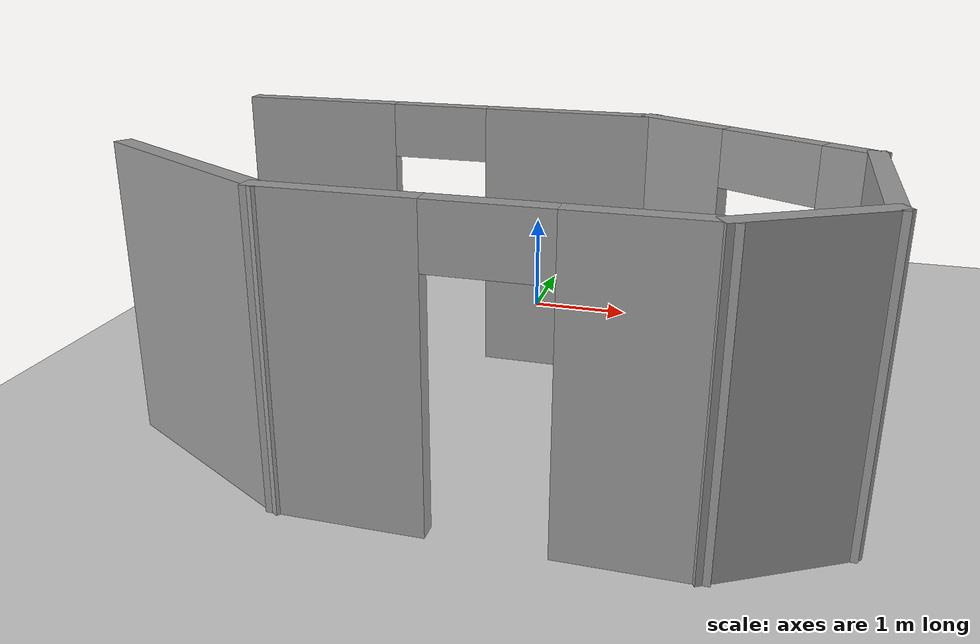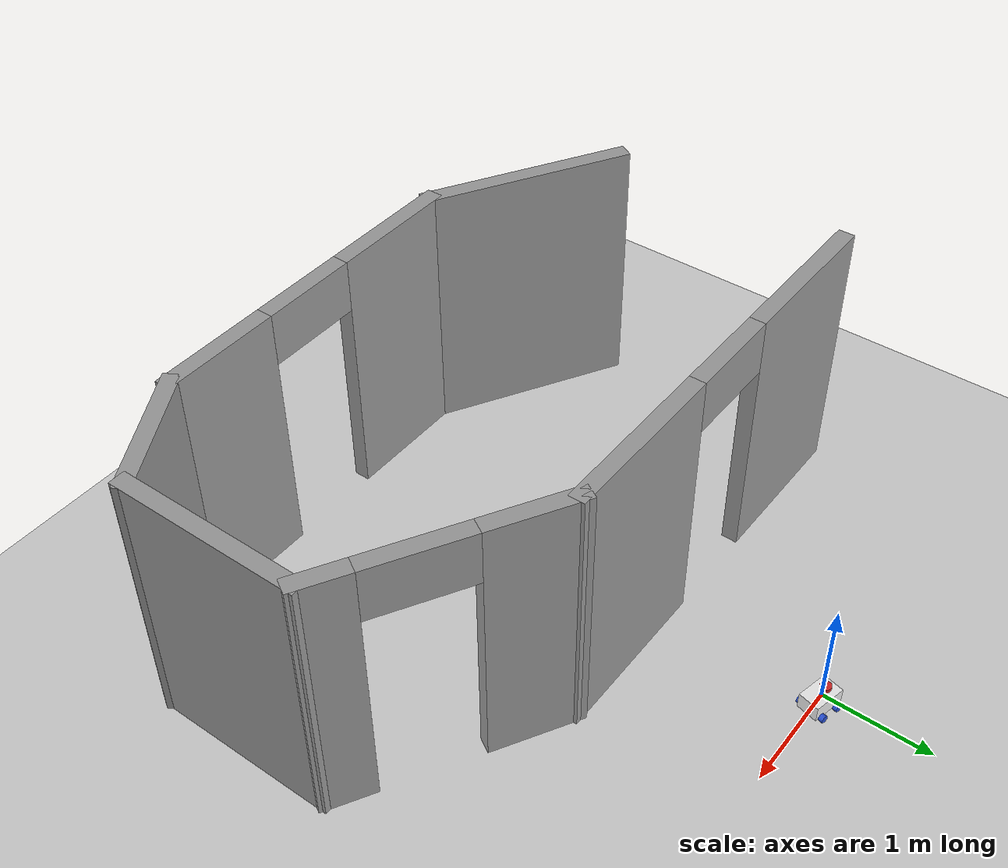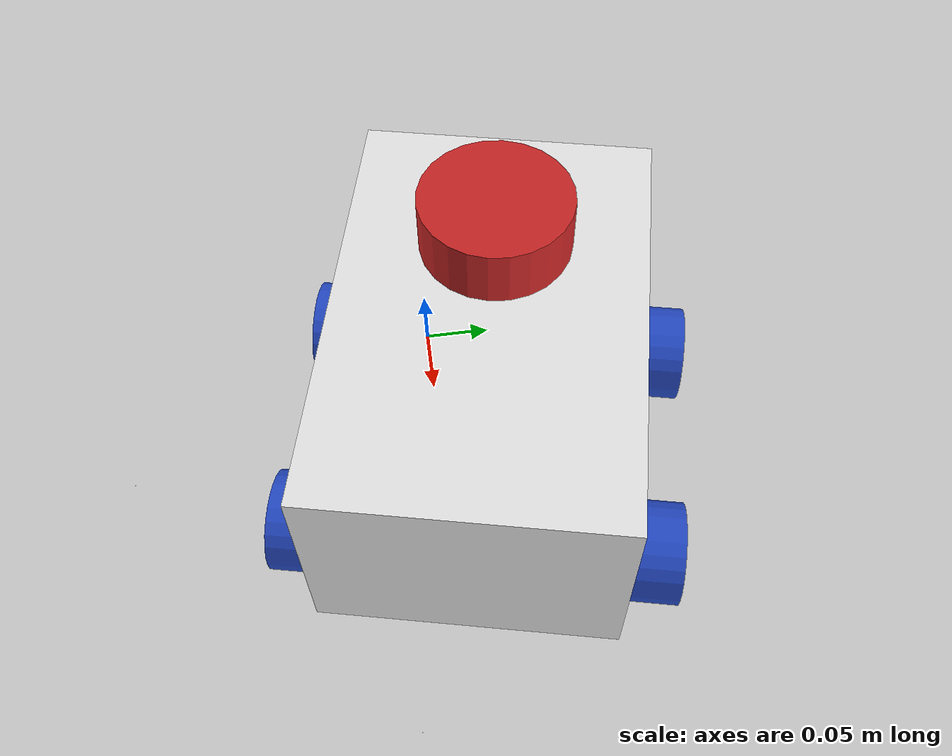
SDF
<sdf version="1.7">
 <world name="default">
  <light name="sun" type="directional">
   <pose>0 0 10 0 -0 0</pose>
   <diffuse>0.8 0.8 0.8 1</diffuse>
   <specular>0.2 0.2 0.2 1</specular>
   <attenuation>
    <range>1000</range>
    <constant>0.9</constant>
    <linear>0.01</linear>
    <quadratic>0.001</quadratic>
   </attenuation>
   <direction>-0.5 0.1 -0.9</direction>
   <spot><inner_angle>0</inner_angle><outer_angle>0</outer_angle><falloff>0</falloff></spot>
  </light>
  <model name="ground_plane">
   <static>1</static>
   <link name="link">
    <collision name="collision">
     <geometry><plane><normal>0 0 1</normal><size>100 100</size></plane></geometry>
     <surface><friction><ode><mu>100</mu><mu2>50</mu2></ode></friction></surface>
    </collision>
    <visual name="visual">
     <cast_shadows>0</cast_shadows>
     <geometry><plane><normal>0 0 1</normal><size>100 100</size></plane></geometry>
     <material>
      <script><uri>file://media/materials/scripts/gazebo.material</uri><name>Gazebo/Grey</name></script>
     </material>
    </visual>
   </link>
  </model>
  <gravity>0 0 -9.8</gravity>
  <magnetic_field>6e-06 2.3e-05 -4.2e-05</magnetic_field>
  <atmosphere type="adiabatic"/>
  <physics type="ode">
   <max_step_size>0.001</max_step_size>
   <real_time_factor>1</real_time_factor>
   <real_time_update_rate>1000</real_time_update_rate>
  </physics>
  <scene><ambient>0.4 0.4 0.4 1</ambient><background>0.7 0.7 0.7 1</background><shadows>1</shadows></scene>
  <audio><device>default</device></audio>
  <spherical_coordinates>
   <surface_model>EARTH_WGS84</surface_model>
   <latitude_deg>0</latitude_deg>
   <longitude_deg>0</longitude_deg>
   <elevation>0</elevation>
   <heading_deg>0</heading_deg>
  </spherical_coordinates>
  <model name="my_bot">
   <link name="base_link">
    <inertial>
     <pose>0.076667 0 0.091667 0 -0 0</pose>
     <mass>0.6</mass>
     <inertia>
      <ixx>0.00559667</ixx>
      <ixy>0</ixy>
      <ixz>0.000416667</ixz>
      <iyy>0.005805</iyy>
      <iyz>0</iyz>
      <izz>0.00783333</izz>
     </inertia>
    </inertial>
    <collision name="base_link_fixed_joint_lump__chassis_collision">
     <pose>0.085 0 0.075 0 -0 0</pose>
     <geometry><box><size>0.3 0.2 0.15</size></box></geometry>
    </collision>
    <collision name="base_link_fixed_joint_lump__laser_frame_collision_1">
     <pose>0.035 0 0.175 0 -0 0</pose>
     <geometry><cylinder><length>0.04</length><radius>0.05</radius></cylinder></geometry>
    </collision>
    <visual name="base_link_fixed_joint_lump__chassis_visual">
     <pose>0.085 0 0.075 0 -0 0</pose>
     <geometry><box><size>0.3 0.2 0.15</size></box></geometry>
     <material>
      <script><name>Gazebo/White</name><uri>file://media/materials/scripts/gazebo.material</uri></script>
     </material>
    </visual>
    <visual name="base_link_fixed_joint_lump__laser_frame_visual_1">
     <pose>0.035 0 0.175 0 -0 0</pose>
     <geometry><cylinder><length>0.04</length><radius>0.05</radius></cylinder></geometry>
     <material>
      <script><name>Gazebo/Red</name><uri>file://media/materials/scripts/gazebo.material</uri></script>
     </material>
    </visual>
    <sensor name="laser" type="ray">
     <visualize>0</visualize>
     <update_rate>10</update_rate>
     <ray>
      <scan>
       <horizontal>
        <samples>360</samples>
        <resolution>1</resolution>
        <min_angle>-3.14</min_angle>
        <max_angle>3.14</max_angle>
       </horizontal>
       <vertical><samples>1</samples><min_angle>0</min_angle><max_angle>0</max_angle></vertical>
      </scan>
      <range><min>0.3</min><max>12</max><resolution>0.01</resolution></range>
     </ray>
     <plugin name="laser_controller" filename="libgazebo_ros_ray_sensor.so">
      <ros><argument>~/out:=scan</argument></ros>
      <output_type>sensor_msgs/LaserScan</output_type>
      <frame_name>laser_frame</frame_name>
     </plugin>
     <pose>0.035 0 0.175 0 -0 0</pose>
    </sensor>
   </link>
   <joint name="left_wheel_steer_joint" type="revolute">
    <pose relative_to="base_link">0.17 0.12 0 0 -0 0</pose>
    <parent>base_link</parent>
    <child>left_wheel_steer</child>
    <axis>
     <xyz>0 0 1</xyz>
     <limit><lower>-1</lower><upper>1</upper><effort>1</effort><velocity>5</velocity></limit>
     <dynamics><spring_reference>0</spring_reference><spring_stiffness>0</spring_stiffness></dynamics>
    </axis>
   </joint>
   <link name="left_wheel_steer">
    <pose relative_to="left_wheel_steer_joint">0 0 0 0 -0 0</pose>
    <inertial>
     <mass>0.001</mass>
     <inertia>
      <ixx>3.33333e-10</ixx>
      <ixy>0</ixy>
      <ixz>0</ixz>
      <iyy>3.33333e-10</iyy>
      <iyz>0</iyz>
      <izz>5e-10</izz>
     </inertia>
    </inertial>
    <collision name="left_wheel_steer_collision">
     <geometry><sphere><radius>0.001</radius></sphere></geometry>
    </collision>
    <visual name="left_wheel_steer_visual">
     <geometry><cylinder><length>0.001</length><radius>0.001</radius></cylinder></geometry>
     <material>
      <script><name>Gazebo/Blue</name><uri>file://media/materials/scripts/gazebo.material</uri></script>
     </material>
    </visual>
   </link>
   <joint name="F_left_wheel_joint" type="revolute">
    <pose relative_to="left_wheel_steer">0 0 0 -1.5708 0 0</pose>
    <parent>left_wheel_steer</parent>
    <child>F_left_wheel</child>
    <axis>
     <xyz>0 0 1</xyz>
     <limit><lower>-1e+16</lower><upper>1e+16</upper></limit>
     <dynamics><spring_reference>0</spring_reference><spring_stiffness>0</spring_stiffness></dynamics>
    </axis>
   </joint>
   <link name="F_left_wheel">
    <pose relative_to="F_left_wheel_joint">0 0 0 0 -0 0</pose>
    <inertial>
     <mass>0.1</mass>
     <inertia>
      <ixx>4.39583e-05</ixx>
      <ixy>0</ixy>
      <ixz>0</ixz>
      <iyy>4.39583e-05</iyy>
      <iyz>0</iyz>
      <izz>6.125e-05</izz>
     </inertia>
    </inertial>
    <collision name="F_left_wheel_collision">
     <geometry><sphere><radius>0.035</radius></sphere></geometry>
    </collision>
    <visual name="F_left_wheel_visual">
     <geometry><cylinder><length>0.04</length><radius>0.035</radius></cylinder></geometry>
     <material>
      <script><name>Gazebo/Blue</name><uri>file://media/materials/scripts/gazebo.material</uri></script>
     </material>
    </visual>
   </link>
   <joint name="right_wheel_steer_joint" type="revolute">
    <pose relative_to="base_link">0.17 -0.12 0 0 -0 0</pose>
    <parent>base_link</parent>
    <child>right_wheel_steer</child>
    <axis>
     <xyz>0 0 1</xyz>
     <limit><lower>-1</lower><upper>1</upper><effort>1</effort><velocity>5</velocity></limit>
     <dynamics><spring_reference>0</spring_reference><spring_stiffness>0</spring_stiffness></dynamics>
    </axis>
   </joint>
   <link name="right_wheel_steer">
    <pose relative_to="right_wheel_steer_joint">0 0 0 0 -0 0</pose>
    <inertial>
     <mass>0.001</mass>
     <inertia>
      <ixx>3.33333e-10</ixx>
      <ixy>0</ixy>
      <ixz>0</ixz>
      <iyy>3.33333e-10</iyy>
      <iyz>0</iyz>
      <izz>5e-10</izz>
     </inertia>
    </inertial>
    <collision name="right_wheel_steer_collision">
     <geometry><sphere><radius>0.001</radius></sphere></geometry>
    </collision>
    <visual name="right_wheel_steer_visual">
     <geometry><cylinder><length>0.001</length><radius>0.001</radius></cylinder></geometry>
     <material>
      <script><name>Gazebo/Blue</name><uri>file://media/materials/scripts/gazebo.material</uri></script>
     </material>
    </visual>
   </link>
   <joint name="F_right_wheel_joint" type="revolute">
    <pose relative_to="right_wheel_steer">0 0 0 1.5708 -0 0</pose>
    <parent>right_wheel_steer</parent>
    <child>F_right_wheel</child>
    <axis>
     <xyz>0 0 1</xyz>
     <limit><lower>-1e+16</lower><upper>1e+16</upper></limit>
     <dynamics><spring_reference>0</spring_reference><spring_stiffness>0</spring_stiffness></dynamics>
    </axis>
   </joint>
   <link name="F_right_wheel">
    <pose relative_to="F_right_wheel_joint">0 0 0 0 -0 0</pose>
    <inertial>
     <mass>0.1</mass>
     <inertia>
      <ixx>4.39583e-05</ixx>
      <ixy>0</ixy>
      <ixz>0</ixz>
      <iyy>4.39583e-05</iyy>
      <iyz>0</iyz>
      <izz>6.125e-05</izz>
     </inertia>
    </inertial>
    <collision name="F_right_wheel_collision">
     <geometry><sphere><radius>0.035</radius></sphere></geometry>
    </collision>
    <visual name="F_right_wheel_visual">
     <geometry><cylinder><length>0.04</length><radius>0.035</radius></cylinder></geometry>
     <material>
      <script><name>Gazebo/Blue</name><uri>file://media/materials/scripts/gazebo.material</uri></script>
     </material>
    </visual>
   </link>
   <joint name="left_wheel_joint" type="revolute">
    <pose relative_to="base_link">0 0.12 0 -1.5708 0 0</pose>
    <parent>base_link</parent>
    <child>left_wheel</child>
    <axis>
     <xyz>0 0 1</xyz>
     <limit><lower>-1e+16</lower><upper>1e+16</upper></limit>
     <dynamics><spring_reference>0</spring_reference><spring_stiffness>0</spring_stiffness></dynamics>
    </axis>
   </joint>
   <link name="left_wheel">
    <pose relative_to="left_wheel_joint">0 0 0 0 -0 0</pose>
    <inertial>
     <pose>0 0.1 0 0 -0 0</pose>
     <mass>0.1</mass>
     <inertia>
      <ixx>4.39583e-05</ixx>
      <ixy>0</ixy>
      <ixz>0</ixz>
      <iyy>4.39583e-05</iyy>
      <iyz>0</iyz>
      <izz>6.125e-05</izz>
     </inertia>
    </inertial>
    <collision name="left_wheel_collision">
     <geometry><sphere><radius>0.035</radius></sphere></geometry>
    </collision>
    <visual name="left_wheel_visual">
     <geometry><cylinder><length>0.04</length><radius>0.035</radius></cylinder></geometry>
     <material>
      <script><name>Gazebo/Blue</name><uri>file://media/materials/scripts/gazebo.material</uri></script>
     </material>
    </visual>
   </link>
   <joint name="right_wheel_joint" type="revolute">
    <pose relative_to="base_link">0 -0.12 0 1.5708 -0 0</pose>
    <parent>base_link</parent>
    <child>right_wheel</child>
    <axis>
     <xyz>0 0 -1</xyz>
     <limit><lower>-1e+16</lower><upper>1e+16</upper></limit>
     <dynamics><spring_reference>0</spring_reference><spring_stiffness>0</spring_stiffness></dynamics>
    </axis>
   </joint>
   <link name="right_wheel">
    <pose relative_to="right_wheel_joint">0 0 0 0 -0 0</pose>
    <inertial>
     <mass>0.1</mass>
     <inertia>
      <ixx>4.39583e-05</ixx>
      <ixy>0</ixy>
      <ixz>0</ixz>
      <iyy>4.39583e-05</iyy>
      <iyz>0</iyz>
      <izz>6.125e-05</izz>
     </inertia>
    </inertial>
    <collision name="right_wheel_collision">
     <geometry><sphere><radius>0.035</radius></sphere></geometry>
    </collision>
    <visual name="right_wheel_visual">
     <geometry><cylinder><length>0.04</length><radius>0.035</radius></cylinder></geometry>
     <material>
      <script><name>Gazebo/Blue</name><uri>file://media/materials/scripts/gazebo.material</uri></script>
     </material>
    </visual>
   </link>
   <static>0</static>
   <plugin name="gazebo_ros2_control" filename="libgazebo_ros2_control.so">
    <parameters>/home/carloso/ros2_ws_23_2/install/f1_12th_simulator_g01/share/f1_12th_simulator_g01/config/my_controllers.yaml</parameters>
   </plugin>
   <pose>0.03694 0.053972 0.034999 -1.1e-05 0.000195 -0.23422</pose>
  </model>
  <model name="Mundo1">
   <pose>0.351266 -2.40623 0 0 -0 0</pose>
   <link name="Wall_0">
    <pose>-0.916266 0.896226 0 0 -0 0</pose>
    <visual name="Wall_0_Visual_0">
     <pose>-1.2475 0 1.25 0 -0 0</pose>
     <geometry><box><size>1.505 0.15 2.5</size></box></geometry>
     <material>
      <script><uri>file://media/materials/scripts/gazebo.material</uri><name>Gazebo/Grey</name></script>
      <ambient>1 1 1 1</ambient>
     </material>
     <meta><layer>0</layer></meta>
    </visual>
    <collision name="Wall_0_Collision_0">
     <geometry><box><size>1.505 0.15 2.5</size></box></geometry>
     <pose>-1.2475 0 1.25 0 -0 0</pose>
    </collision>
    <visual name="Wall_0_Visual_1">
     <pose>1.2025 0 1.25 0 -0 0</pose>
     <geometry><box><size>1.595 0.15 2.5</size></box></geometry>
     <material>
      <script><uri>file://media/materials/scripts/gazebo.material</uri><name>Gazebo/Grey</name></script>
      <ambient>1 1 1 1</ambient>
     </material>
     <meta><layer>0</layer></meta>
    </visual>
    <collision name="Wall_0_Collision_1">
     <geometry><box><size>1.595 0.15 2.5</size></box></geometry>
     <pose>1.2025 0 1.25 0 -0 0</pose>
    </collision>
    <visual name="Wall_0_Visual_2">
     <pose>-0.045 0 2.25 0 -0 0</pose>
     <geometry><box><size>0.9 0.15 0.5</size></box></geometry>
     <material>
      <script><uri>file://media/materials/scripts/gazebo.material</uri><name>Gazebo/Grey</name></script>
      <ambient>1 1 1 1</ambient>
     </material>
     <meta><layer>0</layer></meta>
    </visual>
    <collision name="Wall_0_Collision_2">
     <geometry><box><size>0.9 0.15 0.5</size></box></geometry>
     <pose>-0.045 0 2.25 0 -0 0</pose>
    </collision>
   </link>
   <link name="Wall_1">
    <pose>1.91806 0.371226 0 0 -0 -0.523599</pose>
    <visual name="Wall_1_Visual_0">
     <pose>-0.695516 0 1.25 0 -0 0</pose>
     <geometry><box><size>0.858968 0.15 2.5</size></box></geometry>
     <material>
      <script><uri>file://media/materials/scripts/gazebo.material</uri><name>Gazebo/Grey</name></script>
      <ambient>1 1 1 1</ambient>
     </material>
     <meta><layer>0</layer></meta>
    </visual>
    <collision name="Wall_1_Collision_0">
     <geometry><box><size>0.858968 0.15 2.5</size></box></geometry>
     <pose>-0.695516 0 1.25 0 -0 0</pose>
    </collision>
    <visual name="Wall_1_Visual_1">
     <pose>0.879484 0 1.25 0 -0 0</pose>
     <geometry><box><size>0.491032 0.15 2.5</size></box></geometry>
     <material>
      <script><uri>file://media/materials/scripts/gazebo.material</uri><name>Gazebo/Grey</name></script>
      <ambient>1 1 1 1</ambient>
     </material>
     <meta><layer>0</layer></meta>
    </visual>
    <collision name="Wall_1_Collision_1">
     <geometry><box><size>0.491032 0.15 2.5</size></box></geometry>
     <pose>0.879484 0 1.25 0 -0 0</pose>
    </collision>
    <visual name="Wall_1_Visual_2">
     <pose>0.183968 0 2.25 0 -0 0</pose>
     <geometry><box><size>0.9 0.15 0.5</size></box></geometry>
     <material>
      <script><uri>file://media/materials/scripts/gazebo.material</uri><name>Gazebo/Grey</name></script>
      <ambient>1 1 1 1</ambient>
     </material>
     <meta><layer>0</layer></meta>
    </visual>
    <collision name="Wall_1_Collision_2">
     <geometry><box><size>0.9 0.15 0.5</size></box></geometry>
     <pose>0.183968 0 2.25 0 -0 0</pose>
    </collision>
   </link>
   <link name="Wall_2">
    <collision name="Wall_2_Collision">
     <geometry><box><size>1.75 0.15 2.5</size></box></geometry>
     <pose>0 0 1.25 0 -0 0</pose>
    </collision>
    <visual name="Wall_2_Visual">
     <pose>0 0 1.25 0 -0 0</pose>
     <geometry><box><size>1.75 0.15 2.5</size></box></geometry>
     <material>
      <script><uri>file://media/materials/scripts/gazebo.material</uri><name>Gazebo/Grey</name></script>
      <ambient>1 1 1 1</ambient>
     </material>
     <meta><layer>0</layer></meta>
    </visual>
    <pose>2.82739 -0.953774 0 0 -0 -1.5708</pose>
   </link>
   <link name="Wall_3">
    <collision name="Wall_3_Collision">
     <geometry><box><size>1.25 0.15 2.5</size></box></geometry>
     <pose>0 0 1.25 0 -0 0</pose>
    </collision>
    <visual name="Wall_3_Visual">
     <pose>0 0 1.25 0 -0 0</pose>
     <geometry><box><size>1.25 0.15 2.5</size></box></geometry>
     <material>
      <script><uri>file://media/materials/scripts/gazebo.material</uri><name>Gazebo/Grey</name></script>
      <ambient>1 1 1 1</ambient>
     </material>
     <meta><layer>0</layer></meta>
    </visual>
    <pose>2.35107 -2.02877 0 0 -0 -2.61799</pose>
   </link>
   <link name="Wall_4">
    <pose>0.32476 -2.30377 0 0 -0 3.14159</pose>
    <visual name="Wall_4_Visual_0">
     <pose>-1.07449 0 1.25 0 -0 0</pose>
     <geometry><box><size>1.10102 0.15 2.5</size></box></geometry>
     <material>
      <script><uri>file://media/materials/scripts/gazebo.material</uri><name>Gazebo/Grey</name></script>
      <ambient>1 1 1 1</ambient>
     </material>
     <meta><layer>0</layer></meta>
    </visual>
    <collision name="Wall_4_Collision_0">
     <geometry><box><size>1.10102 0.15 2.5</size></box></geometry>
     <pose>-1.07449 0 1.25 0 -0 0</pose>
    </collision>
    <visual name="Wall_4_Visual_1">
     <pose>1.00051 0 1.25 0 -0 0</pose>
     <geometry><box><size>1.24897 0.15 2.5</size></box></geometry>
     <material>
      <script><uri>file://media/materials/scripts/gazebo.material</uri><name>Gazebo/Grey</name></script>
      <ambient>1 1 1 1</ambient>
     </material>
     <meta><layer>0</layer></meta>
    </visual>
    <collision name="Wall_4_Collision_1">
     <geometry><box><size>1.24897 0.15 2.5</size></box></geometry>
     <pose>1.00051 0 1.25 0 -0 0</pose>
    </collision>
    <visual name="Wall_4_Visual_2">
     <pose>-0.073975 0 2.25 0 -0 0</pose>
     <geometry><box><size>0.9 0.15 0.5</size></box></geometry>
     <material>
      <script><uri>file://media/materials/scripts/gazebo.material</uri><name>Gazebo/Grey</name></script>
      <ambient>1 1 1 1</ambient>
     </material>
     <meta><layer>0</layer></meta>
    </visual>
    <collision name="Wall_4_Collision_2">
     <geometry><box><size>0.9 0.15 0.5</size></box></geometry>
     <pose>-0.073975 0 2.25 0 -0 0</pose>
    </collision>
   </link>
   <link name="Wall_5">
    <collision name="Wall_5_Collision">
     <geometry><box><size>2 0.15 2.5</size></box></geometry>
     <pose>0 0 1.25 0 -0 0</pose>
    </collision>
    <visual name="Wall_5_Visual">
     <pose>0 0 1.25 0 -0 0</pose>
     <geometry><box><size>2 0.15 2.5</size></box></geometry>
     <material>
      <script><uri>file://media/materials/scripts/gazebo.material</uri><name>Gazebo/Grey</name></script>
      <ambient>1 1 1 1</ambient>
     </material>
     <meta><layer>0</layer></meta>
    </visual>
    <pose>-2.02631 -1.84127 0 0 -0 2.61799</pose>
   </link>
   <static>1</static>
  </model>
 </world>
</sdf>
